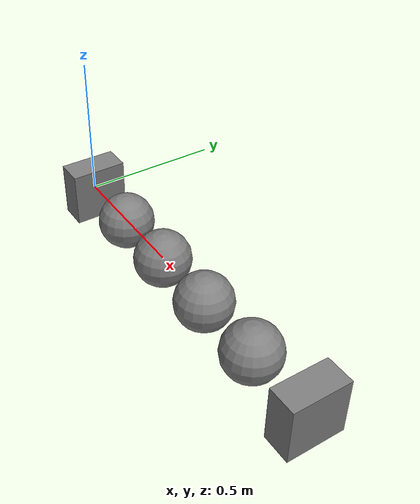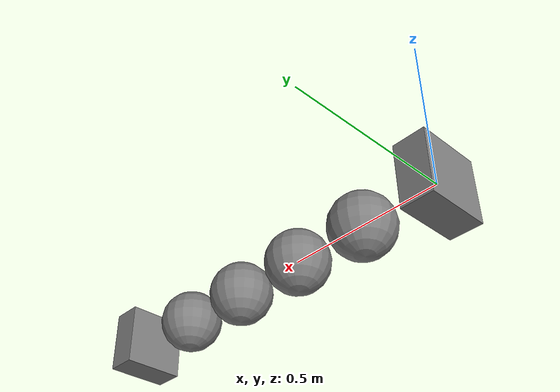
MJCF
<mujoco>
  <option gravity="1 0 0">
    <flag island="enable"/>
  </option>

  <default>
    <joint type="slide" axis="1 0 0" damping="10"/>
    <geom size=".1"/>
  </default>

  <worldbody>
    <body>
      <geom type="box" size=".05 .1 .1"/>
    </body>
    <body pos=".25 0 0">
      <joint/>
      <geom/>
    </body>
    <body pos=".5 0 0">
      <joint/>
      <geom/>
    </body>
    <body pos=".75 0 0">
      <joint/>
      <geom/>
    </body>
    <body pos="1 0 0">
      <joint/>
      <geom/>
    </body>
    <body pos="1.25 0 0">
      <geom type="box" size=".05 .1 .1"/>
    </body>
  </worldbody>
</mujoco>
